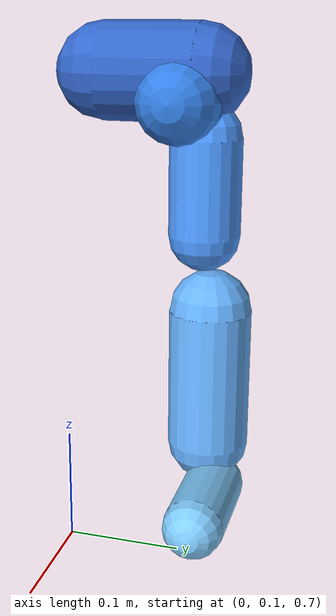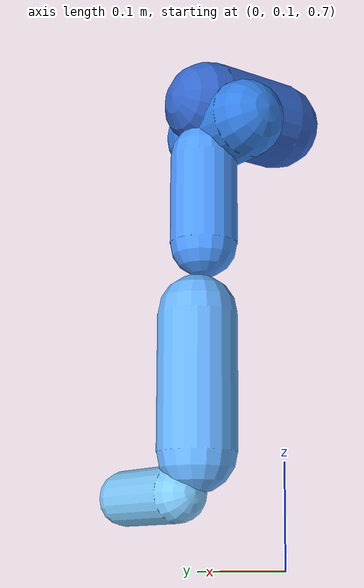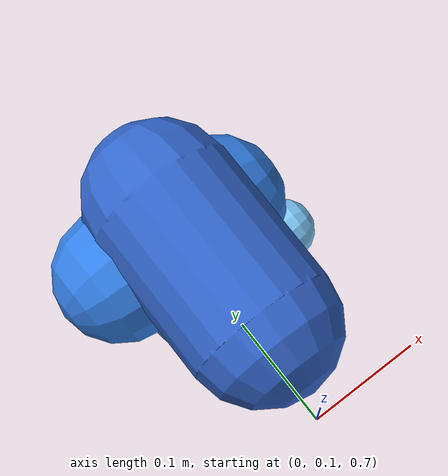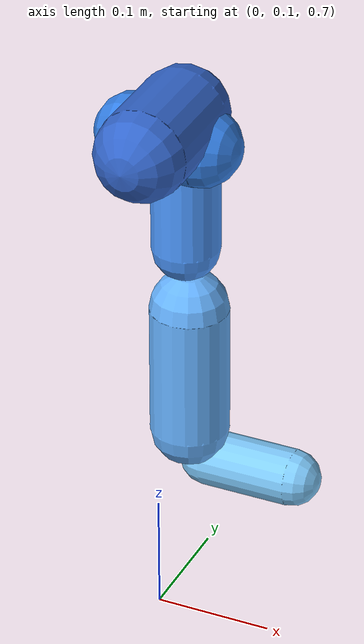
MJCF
<mujoco model="pm_v2_left_arm_light">
  <compiler angle="radian" autolimits="true"/>
  <option integrator="implicitfast" timestep="0.002"><flag contact="disable"/></option>
  <worldbody>
    <body name="torso" pos="0 0 0.9"><inertial pos="0 0 0" mass="1e-3" diaginertia="1e-12 1e-12 1e-12"/>
      <body name="LINK_SHOULDER_PITCH_L" pos="-0.027105 0.12916 0.21549">
        <inertial pos="-0.006255 0.061309 -0.016580" quat="0.526158 0.836720 -0.143374 0.0500143" mass="0.866904" diaginertia="0.001352 0.000998 0.000579"/>
        <joint name="J13_SHOULDER_PITCH_L" type="hinge" axis="0 0.998027 0.0627908" range="-2.9671 2.7925" armature="0.02" damping="0.01" frictionloss="0.5"/>
        <geom type="capsule" fromto="0 0 0 0 0.08 0" size="0.04" rgba="0.2 0.4 0.8 1"/>
        <body name="LINK_SHOULDER_ROLL_L" pos="-0.0371 0.066941 -0.020838">
          <inertial pos="0.040405 0.006298 -0.024370" quat="0.694988 -0.115505 0.0954646 0.703233" mass="0.469948" diaginertia="0.001252 0.001062 0.000955"/>
          <joint name="J14_SHOULDER_ROLL_L" type="hinge" axis="1 0 0" range="-0.6108 2.3562" armature="0.02" damping="0.01" frictionloss="0.5"/>
          <geom type="capsule" fromto="0 0 0 0.06 0 0" size="0.035" rgba="0.2 0.5 0.9 1"/>
          <body name="LINK_SHOULDER_YAW_L" pos="0.0371 0.017645 -0.070132">
            <inertial pos="-0.000922 0.001996 -0.048862" quat="0.999922 -0.00834297 -0.00593057 0.00715565" mass="0.854590" diaginertia="0.001508 0.001630 0.000724"/>
            <joint name="J15_SHOULDER_YAW_L" type="hinge" axis="0 -0.0628027 0.998026" range="-2.618 2.618" armature="0.02" damping="0.01" frictionloss="0.5"/>
            <geom type="capsule" fromto="0 0 -0.04 0 0 0.04" size="0.03" rgba="0.3 0.6 1.0 1"/>
            <body name="LINK_ELBOW_PITCH_L" pos="0 0.0065994 -0.10487">
              <inertial pos="0.002714 0.002016 -0.060622" quat="0.850602 -0.0227837 0.0480929 0.52311" mass="1.283967" diaginertia="0.006427 0.005400 0.000846"/>
              <joint name="J16_ELBOW_PITCH_L" type="hinge" axis="0.00272431 0.998022 0.0628031" range="-2.1948 0.7374" armature="0.02" damping="0.01" frictionloss="0.5"/>
              <geom type="capsule" fromto="0 0 0 0 0 -0.12" size="0.035" rgba="0.4 0.7 1.0 1"/>
              <body name="LINK_ELBOW_YAW_L" pos="0.013817 0.0097723 -0.1547">
                <inertial pos="0.018772 0.000233 -0.095415" quat="0.993617 -0.0142345 -0.111507 -0.00947408" mass="0.430117" diaginertia="0.001589 0.001891 0.000303"/>
                <joint name="J17_ELBOW_YAW_L" type="hinge" axis="-0.214789 -0.0619207 0.974696" range="-2.618 2.618" armature="0.02" damping="0.01" frictionloss="0.5"/>
                <geom type="capsule" fromto="0 0 0 0.08 0 0" size="0.025" rgba="0.5 0.8 1.0 1"/>
              </body>
            </body>
          </body>
        </body>
      </body>
    </body>
  </worldbody>
  <actuator>
    <motor name="motor_J13" joint="J13_SHOULDER_PITCH_L" gear="1" ctrllimited="true" ctrlrange="-61 61"/>
    <motor name="motor_J14" joint="J14_SHOULDER_ROLL_L" gear="1" ctrllimited="true" ctrlrange="-61 61"/>
    <motor name="motor_J15" joint="J15_SHOULDER_YAW_L" gear="1" ctrllimited="true" ctrlrange="-61 61"/>
    <motor name="motor_J16" joint="J16_ELBOW_PITCH_L" gear="1" ctrllimited="true" ctrlrange="-61 61"/>
    <motor name="motor_J17" joint="J17_ELBOW_YAW_L" gear="1" ctrllimited="true" ctrlrange="-61 61"/>
  </actuator>
  <sensor>
    <jointpos name="J13_pos" joint="J13_SHOULDER_PITCH_L"/><jointvel name="J13_vel" joint="J13_SHOULDER_PITCH_L"/><jointtorque name="J13_torque" joint="J13_SHOULDER_PITCH_L"/>
    <jointpos name="J14_pos" joint="J14_SHOULDER_ROLL_L"/><jointvel name="J14_vel" joint="J14_SHOULDER_ROLL_L"/><jointtorque name="J14_torque" joint="J14_SHOULDER_ROLL_L"/>
    <jointpos name="J15_pos" joint="J15_SHOULDER_YAW_L"/><jointvel name="J15_vel" joint="J15_SHOULDER_YAW_L"/><jointtorque name="J15_torque" joint="J15_SHOULDER_YAW_L"/>
    <jointpos name="J16_pos" joint="J16_ELBOW_PITCH_L"/><jointvel name="J16_vel" joint="J16_ELBOW_PITCH_L"/><jointtorque name="J16_torque" joint="J16_ELBOW_PITCH_L"/>
    <jointpos name="J17_pos" joint="J17_ELBOW_YAW_L"/><jointvel name="J17_vel" joint="J17_ELBOW_YAW_L"/><jointtorque name="J17_torque" joint="J17_ELBOW_YAW_L"/>
  </sensor>
</mujoco>
